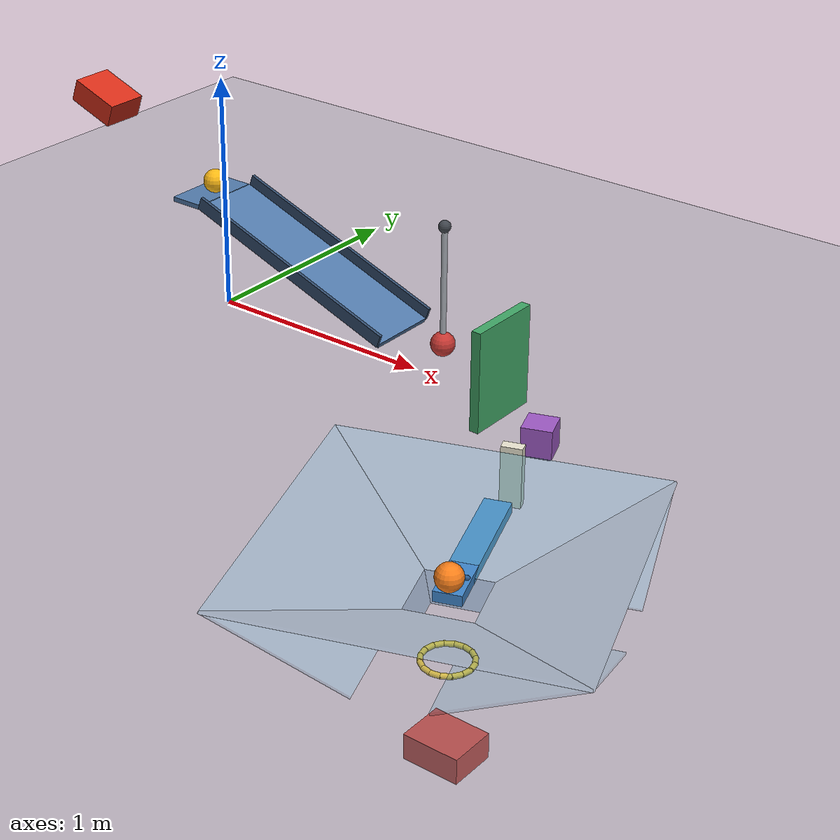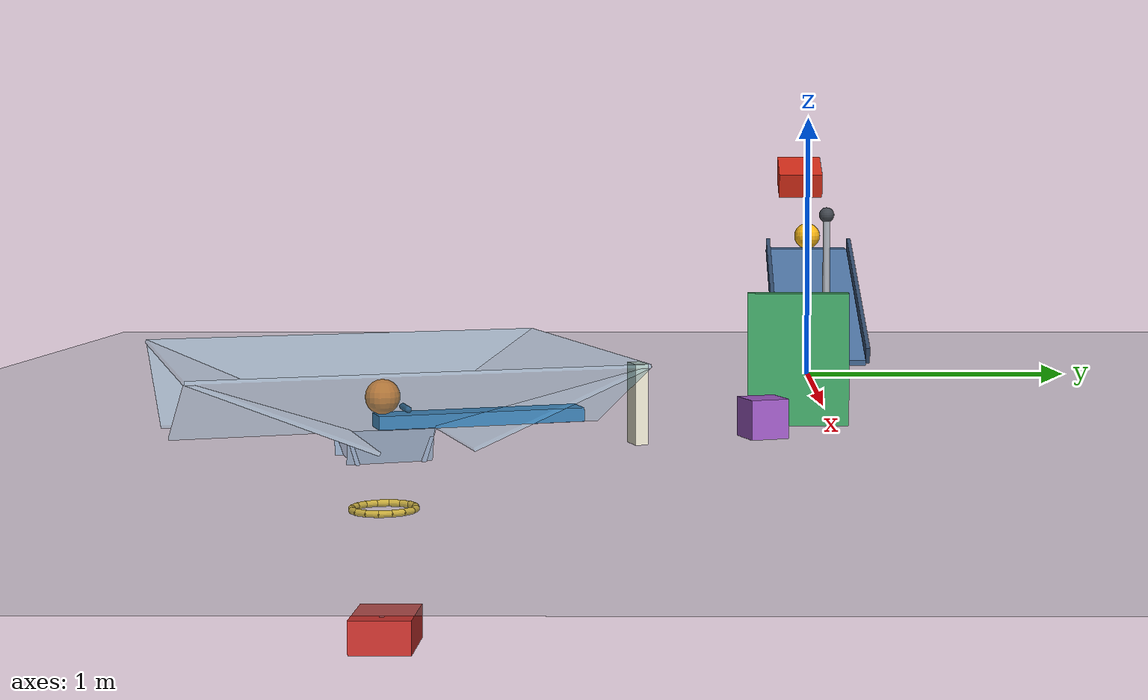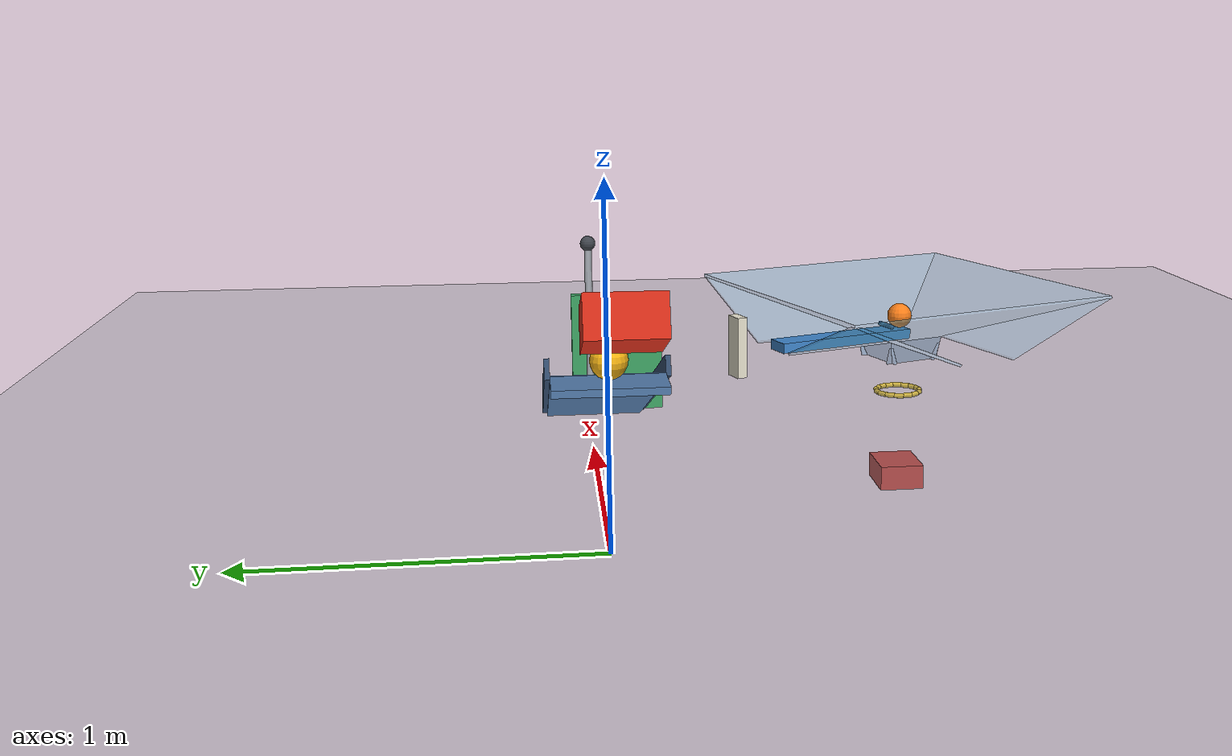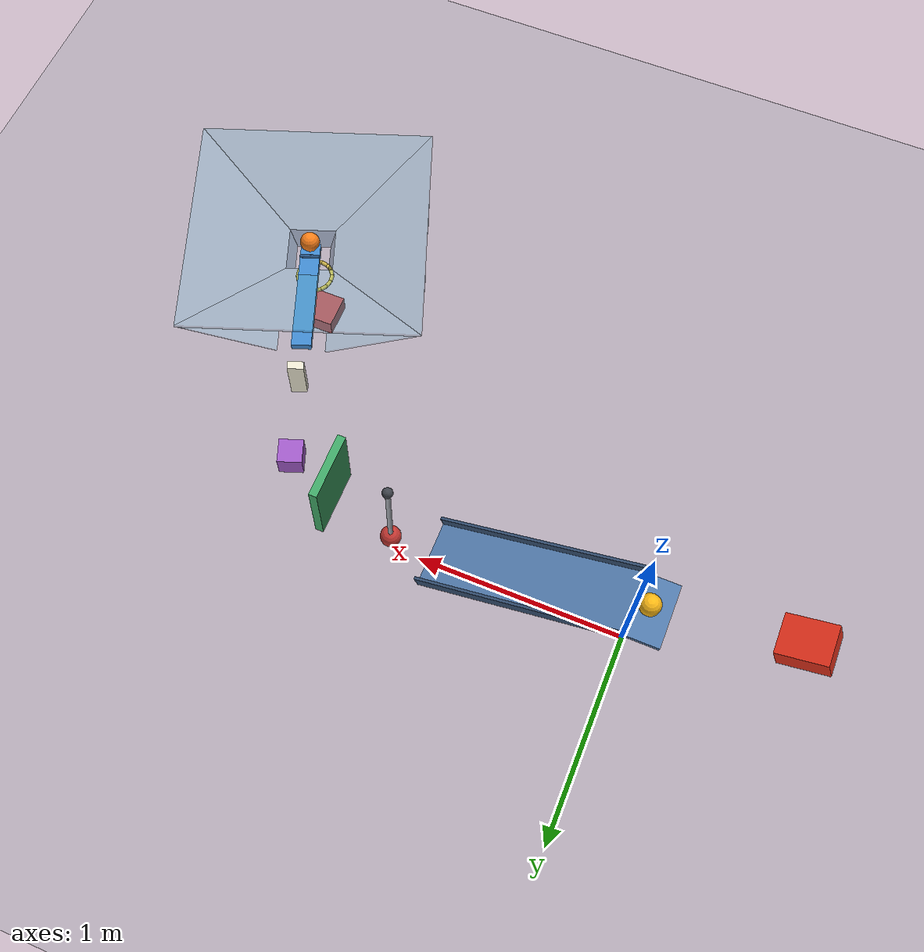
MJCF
<mujoco model="revised_chain_with_powered_assists">
  <compiler angle="degree" autolimits="true"/>
  <option timestep="0.002" gravity="0 0 -9.81" integrator="implicitfast" solver="Newton" iterations="100" tolerance="1e-10"/>
  <size njmax="5000" nconmax="1000"/>
  <visual>
    <global azimuth="135" elevation="-20"/>
    <quality shadowsize="2048"/>
  </visual>

  <!-- Restitution 0.05 is approximated through contact damping ratio 0.69. -->
  <!-- All hinge joints have damping 0.04; actuators add no velocity-dependent damping. -->
  <!-- All slide joints have damping 0.20. -->
  <!-- Collision filtering represents an open well beneath the launching mechanism. -->
  <!-- Powered assists reinforce displacement after contact; their reference forces are zero. -->
  <!-- This scene has not been simulation-validated. -->

  <worldbody>
    <light name="main_light" pos="0 -3 5" dir="0 0 -1" diffuse="0.8 0.8 0.8"/>
    <light name="fill_light" pos="4 3 3" dir="-1 -1 -1" diffuse="0.4 0.4 0.4"/>
    <camera name="overview" pos="4.5 -5 3" xyaxes="0.7809 0.6247 0 -0.2714 0.3393 0.9006"/>

    <geom name="floor" type="plane" pos="0 0 0" size="5 4 0.1" contype="1" conaffinity="1" condim="6" friction="0.68 0.005 0.0015" solref="0.006 0.69" solimp="0.95 0.99 0.001" rgba="0.55 0.59 0.62 0.28"/>

    <!-- Front-face clearance to ball1 is 0.50 m along the slide axis. -->
    <body name="cart1" pos="-0.67519713 0 0.76775344" quat="0.984807753 0 0.173648178 0">
      <joint name="cart1_slide" type="slide" axis="1 0 0" damping="0.20" limited="true" range="0 0.57" solreflimit="0.004 1"/>
      <geom name="cart1_chassis" type="box" size="0.11 0.09 0.05" mass="0.50" contype="1" conaffinity="1" condim="6" friction="0.68 0.005 0.0015" solref="0.006 0.69" solimp="0.95 0.99 0.001" rgba="0.85 0.18 0.10 1"/>
    </body>

    <!-- Main surface: length 1.00 m, width 0.30 m, inclination 20 degrees. -->
    <!-- The low surface edge is at z=0.15. -->
    <body name="ramp1" pos="0.46984631 0 0.32101007" quat="0.984807753 0 0.173648178 0">
      <geom name="ramp1_surface" type="box" pos="0 0 -0.01" size="0.50 0.15 0.01" contype="1" conaffinity="1" condim="6" friction="0.68 0.005 0.0015" solref="0.006 0.69" solimp="0.95 0.99 0.001" rgba="0.32 0.48 0.67 1"/>
      <geom name="ramp1_staging_shelf" type="box" pos="-0.571746 0 -0.036752" quat="0.984807753 0 -0.173648178 0" size="0.075 0.15 0.01" contype="1" conaffinity="1" condim="6" friction="0.68 0.005 0.0015" solref="0.006 0.69" solimp="0.95 0.99 0.001" rgba="0.32 0.48 0.67 1"/>
      <geom name="ramp1_left_rail" type="box" pos="0 -0.157 0.018" size="0.50 0.007 0.028" contype="1" conaffinity="1" condim="3" friction="0.68 0.005 0.0015" solref="0.006 0.69" solimp="0.95 0.99 0.001" rgba="0.20 0.30 0.43 1"/>
      <geom name="ramp1_right_rail" type="box" pos="0 0.157 0.018" size="0.50 0.007 0.028" contype="1" conaffinity="1" condim="3" friction="0.68 0.005 0.0015" solref="0.006 0.69" solimp="0.95 0.99 0.001" rgba="0.20 0.30 0.43 1"/>
    </body>

    <body name="ball1" pos="-0.055 0 0.54202014">
      <freejoint name="ball1_free"/>
      <geom name="ball1_sphere" type="sphere" size="0.05" mass="0.20" contype="1" conaffinity="1" condim="6" friction="0.68 0.005 0.0015" solref="0.006 0.69" solimp="0.95 0.99 0.001" rgba="0.98 0.72 0.08 1"/>
    </body>

    <!-- Pivot-to-bob length 0.50 m; total moving mass 0.35 kg. -->
    <!-- The initial near bob surface is 0.10 m beyond the ramp's low edge. -->
    <body name="pendulum1" pos="1.13969262 0 0.657">
      <joint name="pendulum1_hinge" type="hinge" axis="0 -1 0" damping="0.04" limited="true" range="0 40" solreflimit="0.003 1"/>
      <geom name="pendulum1_rod" type="capsule" fromto="0 0 0 0 0 -0.50" size="0.012" mass="0.04" contype="1" conaffinity="1" condim="3" friction="0.68 0.005 0.0015" solref="0.006 0.69" solimp="0.95 0.99 0.001" rgba="0.65 0.67 0.70 1"/>
      <geom name="pendulum1_bob" type="sphere" pos="0 0 -0.50" size="0.05" mass="0.30" contype="1" conaffinity="1" condim="6" friction="0.68 0.005 0.0015" solref="0.006 0.69" solimp="0.95 0.99 0.001" rgba="0.78 0.22 0.20 1"/>
      <geom name="pendulum1_hub" type="sphere" size="0.025" mass="0.01" contype="0" conaffinity="0" rgba="0.25 0.27 0.30 1"/>
    </body>

    <!-- Vertical door hinge; negative rotation is clockwise from above. -->
    <!-- Panel dimensions: height 0.42, width 0.32, thickness 0.04 m. -->
    <body name="door1" pos="1.491 -0.270 0.210">
      <joint name="door1_hinge" type="hinge" axis="0 0 1" damping="0.04" limited="true" range="-70 0" solreflimit="0.003 1"/>
      <geom name="door1_panel" type="box" pos="0 0.16 0" size="0.02 0.16 0.21" mass="0.45" contype="1" conaffinity="1" condim="6" friction="0.68 0.005 0.0015" solref="0.006 0.69" solimp="0.95 0.99 0.001" rgba="0.25 0.65 0.40 1"/>
    </body>

    <!-- Auxiliary prismatic mount prevents cube tipping while retaining block1's freejoint. -->
    <body name="block1_driver" pos="1.763528116 -0.229337656 0.060" quat="0.819152044 0 0 -0.573576436">
      <inertial pos="0 0 0" mass="0.001" diaginertia="0.000001 0.000001 0.000001"/>
      <joint name="block1_driver_slide" type="slide" axis="1 0 0" damping="0.20" limited="true" range="0 0.32" solreflimit="0.002 1"/>
    </body>

    <body name="block1" pos="1.763528116 -0.229337656 0.060" quat="0.819152044 0 0 -0.573576436">
      <freejoint name="block1_free"/>
      <geom name="block1_cube" type="box" size="0.06 0.06 0.06" mass="0.35" contype="1" conaffinity="1" condim="6" friction="0.68 0.005 0.0015" solref="0.006 0.69" solimp="0.95 0.99 0.001" rgba="0.62 0.35 0.77 1"/>
    </body>

    <!-- Forward-face contact occurs after block1 translates 0.32 m. -->
    <body name="domino1" pos="1.900336173 -0.605214704 0.120" quat="0.819152044 0 0 -0.573576436">
      <freejoint name="domino1_free"/>
      <geom name="domino1_slab" type="box" size="0.02 0.04 0.12" mass="0.25" contype="4" conaffinity="3" condim="6" friction="0.68 0.005 0.0015" solref="0.006 0.69" solimp="0.95 0.99 0.001" rgba="0.92 0.90 0.82 1"/>
    </body>

    <!-- Left tip is 0.18 m beyond domino1's initial center. -->
    <!-- Beam dimensions are 0.60 by 0.10 by 0.04 m; beam plus retaining lip mass is 0.50 kg. -->
    <!-- The retaining lip prevents ball2 from rolling down the tilted beam before the stop. -->
    <body name="lever1" pos="2.064505841 -1.056267162 0.100" quat="0.819152044 0 0 -0.573576436">
      <joint name="lever1_hinge" type="hinge" axis="0 -1 0" damping="0.04" limited="true" range="0 45" solreflimit="0.003 1"/>
      <geom name="lever1_beam" type="box" size="0.30 0.05 0.02" mass="0.497" contype="2" conaffinity="20" condim="6" friction="0.68 0.005 0.0015" solref="0.006 0.69" solimp="0.95 0.99 0.001" rgba="0.25 0.53 0.80 1"/>
      <geom name="lever1_ball_retaining_lip" type="capsule" fromto="0.215 -0.042 0.035 0.215 0.042 0.035" size="0.009" mass="0.003" contype="2" conaffinity="20" condim="6" friction="0.68 0.005 0.0015" solref="0.006 0.69" solimp="0.95 0.99 0.001" rgba="0.16 0.35 0.55 1"/>
    </body>

    <body name="ball2" pos="2.160271481 -1.319381096 0.170">
      <freejoint name="ball2_free"/>
      <geom name="ball2_sphere" type="sphere" size="0.05" mass="0.20" contype="16" conaffinity="98" condim="6" friction="0.68 0.005 0.0015" solref="0.006 0.69" solimp="0.95 0.99 0.001" rgba="0.98 0.50 0.10 1"/>
    </body>

    <!-- Passive catch funnel redirects the launched ball toward the vertically aligned ring. -->
    <!-- Group 64 contacts only ball2, not the lever, domino, block, or floor. -->
    <!-- The inner square mouth has 0.104 m clear width; ring1 itself has 0.16 m clearance. -->
    <body name="ball2_catch_funnel" pos="2.160271481 -1.319381096 0" quat="0.819152044 0 0 -0.573576436">
      <geom name="ball2_catch_funnel_outer_positive_u" type="box" pos="0.361923 0 0.195385" quat="0.980580676 0 -0.196116135 0" size="0.26 0.60 0.005" contype="64" conaffinity="16" condim="6" friction="0.68 0.005 0.0015" solref="0.006 0.69" solimp="0.95 0.99 0.001" rgba="0.35 0.65 0.75 0.35"/>
      <geom name="ball2_catch_funnel_outer_negative_u" type="box" pos="-0.361923 0 0.195385" quat="0.980580676 0 0.196116135 0" size="0.26 0.60 0.005" contype="64" conaffinity="16" condim="6" friction="0.68 0.005 0.0015" solref="0.006 0.69" solimp="0.95 0.99 0.001" rgba="0.35 0.65 0.75 0.35"/>
      <geom name="ball2_catch_funnel_outer_positive_v" type="box" pos="0 0.361923 0.195385" quat="0.980580676 0.196116135 0 0" size="0.60 0.26 0.005" contype="64" conaffinity="16" condim="6" friction="0.68 0.005 0.0015" solref="0.006 0.69" solimp="0.95 0.99 0.001" rgba="0.35 0.65 0.75 0.35"/>
      <geom name="ball2_catch_funnel_outer_negative_v" type="box" pos="0 -0.361923 0.195385" quat="0.980580676 -0.196116135 0 0" size="0.60 0.26 0.005" contype="64" conaffinity="16" condim="6" friction="0.68 0.005 0.0015" solref="0.006 0.69" solimp="0.95 0.99 0.001" rgba="0.35 0.65 0.75 0.35"/>
      <geom name="ball2_catch_funnel_inner_positive_u" type="box" pos="0.090777 0 -0.011477" quat="0.80477 0 -0.59359 0" size="0.115135 0.12 0.005" contype="64" conaffinity="16" condim="6" friction="0.68 0.005 0.0015" solref="0.006 0.69" solimp="0.95 0.99 0.001" rgba="0.25 0.50 0.65 0.45"/>
      <geom name="ball2_catch_funnel_inner_negative_u" type="box" pos="-0.090777 0 -0.011477" quat="0.80477 0 0.59359 0" size="0.115135 0.12 0.005" contype="64" conaffinity="16" condim="6" friction="0.68 0.005 0.0015" solref="0.006 0.69" solimp="0.95 0.99 0.001" rgba="0.25 0.50 0.65 0.45"/>
      <geom name="ball2_catch_funnel_inner_positive_v" type="box" pos="0 0.090777 -0.011477" quat="0.80477 0.59359 0 0" size="0.12 0.115135 0.005" contype="64" conaffinity="16" condim="6" friction="0.68 0.005 0.0015" solref="0.006 0.69" solimp="0.95 0.99 0.001" rgba="0.25 0.50 0.65 0.45"/>
      <geom name="ball2_catch_funnel_inner_negative_v" type="box" pos="0 -0.090777 -0.011477" quat="0.80477 -0.59359 0 0" size="0.12 0.115135 0.005" contype="64" conaffinity="16" condim="6" friction="0.68 0.005 0.0015" solref="0.006 0.69" solimp="0.95 0.99 0.001" rgba="0.25 0.50 0.65 0.45"/>
    </body>

    <!-- Ring center is exactly 0.32 m below ball2's initial center. -->
    <!-- Sixteen capsule segments approximate a horizontal ring with 0.16 m minimum clear diameter. -->
    <body name="ring1" pos="2.160271481 -1.319381096 -0.150">
      <geom name="ring1_segment_00" type="capsule" fromto="0.091763 0 0 0.084778 0.035116 0" size="0.01" contype="2" conaffinity="16" condim="3" friction="0.68 0.005 0.0015" solref="0.006 0.69" solimp="0.95 0.99 0.001" rgba="0.95 0.78 0.15 1"/>
      <geom name="ring1_segment_01" type="capsule" fromto="0.084778 0.035116 0 0.064887 0.064887 0" size="0.01" contype="2" conaffinity="16" condim="3" friction="0.68 0.005 0.0015" solref="0.006 0.69" solimp="0.95 0.99 0.001" rgba="0.95 0.78 0.15 1"/>
      <geom name="ring1_segment_02" type="capsule" fromto="0.064887 0.064887 0 0.035116 0.084778 0" size="0.01" contype="2" conaffinity="16" condim="3" friction="0.68 0.005 0.0015" solref="0.006 0.69" solimp="0.95 0.99 0.001" rgba="0.95 0.78 0.15 1"/>
      <geom name="ring1_segment_03" type="capsule" fromto="0.035116 0.084778 0 0 0.091763 0" size="0.01" contype="2" conaffinity="16" condim="3" friction="0.68 0.005 0.0015" solref="0.006 0.69" solimp="0.95 0.99 0.001" rgba="0.95 0.78 0.15 1"/>
      <geom name="ring1_segment_04" type="capsule" fromto="0 0.091763 0 -0.035116 0.084778 0" size="0.01" contype="2" conaffinity="16" condim="3" friction="0.68 0.005 0.0015" solref="0.006 0.69" solimp="0.95 0.99 0.001" rgba="0.95 0.78 0.15 1"/>
      <geom name="ring1_segment_05" type="capsule" fromto="-0.035116 0.084778 0 -0.064887 0.064887 0" size="0.01" contype="2" conaffinity="16" condim="3" friction="0.68 0.005 0.0015" solref="0.006 0.69" solimp="0.95 0.99 0.001" rgba="0.95 0.78 0.15 1"/>
      <geom name="ring1_segment_06" type="capsule" fromto="-0.064887 0.064887 0 -0.084778 0.035116 0" size="0.01" contype="2" conaffinity="16" condim="3" friction="0.68 0.005 0.0015" solref="0.006 0.69" solimp="0.95 0.99 0.001" rgba="0.95 0.78 0.15 1"/>
      <geom name="ring1_segment_07" type="capsule" fromto="-0.084778 0.035116 0 -0.091763 0 0" size="0.01" contype="2" conaffinity="16" condim="3" friction="0.68 0.005 0.0015" solref="0.006 0.69" solimp="0.95 0.99 0.001" rgba="0.95 0.78 0.15 1"/>
      <geom name="ring1_segment_08" type="capsule" fromto="-0.091763 0 0 -0.084778 -0.035116 0" size="0.01" contype="2" conaffinity="16" condim="3" friction="0.68 0.005 0.0015" solref="0.006 0.69" solimp="0.95 0.99 0.001" rgba="0.95 0.78 0.15 1"/>
      <geom name="ring1_segment_09" type="capsule" fromto="-0.084778 -0.035116 0 -0.064887 -0.064887 0" size="0.01" contype="2" conaffinity="16" condim="3" friction="0.68 0.005 0.0015" solref="0.006 0.69" solimp="0.95 0.99 0.001" rgba="0.95 0.78 0.15 1"/>
      <geom name="ring1_segment_10" type="capsule" fromto="-0.064887 -0.064887 0 -0.035116 -0.084778 0" size="0.01" contype="2" conaffinity="16" condim="3" friction="0.68 0.005 0.0015" solref="0.006 0.69" solimp="0.95 0.99 0.001" rgba="0.95 0.78 0.15 1"/>
      <geom name="ring1_segment_11" type="capsule" fromto="-0.035116 -0.084778 0 0 -0.091763 0" size="0.01" contype="2" conaffinity="16" condim="3" friction="0.68 0.005 0.0015" solref="0.006 0.69" solimp="0.95 0.99 0.001" rgba="0.95 0.78 0.15 1"/>
      <geom name="ring1_segment_12" type="capsule" fromto="0 -0.091763 0 0.035116 -0.084778 0" size="0.01" contype="2" conaffinity="16" condim="3" friction="0.68 0.005 0.0015" solref="0.006 0.69" solimp="0.95 0.99 0.001" rgba="0.95 0.78 0.15 1"/>
      <geom name="ring1_segment_13" type="capsule" fromto="0.035116 -0.084778 0 0.064887 -0.064887 0" size="0.01" contype="2" conaffinity="16" condim="3" friction="0.68 0.005 0.0015" solref="0.006 0.69" solimp="0.95 0.99 0.001" rgba="0.95 0.78 0.15 1"/>
      <geom name="ring1_segment_14" type="capsule" fromto="0.064887 -0.064887 0 0.084778 -0.035116 0" size="0.01" contype="2" conaffinity="16" condim="3" friction="0.68 0.005 0.0015" solref="0.006 0.69" solimp="0.95 0.99 0.001" rgba="0.95 0.78 0.15 1"/>
      <geom name="ring1_segment_15" type="capsule" fromto="0.084778 -0.035116 0 0.091763 0 0" size="0.01" contype="2" conaffinity="16" condim="3" friction="0.68 0.005 0.0015" solref="0.006 0.69" solimp="0.95 0.99 0.001" rgba="0.95 0.78 0.15 1"/>
    </body>

    <!-- This guide begins below the ring and cannot interfere with launch. -->
    <body name="ball2_lower_guide" pos="2.160271481 -1.319381096 0">
      <geom name="ball2_lower_guide_positive_x" type="capsule" fromto="0.059 0 -0.46 0.059 0 -0.20" size="0.007" contype="32" conaffinity="16" condim="3" friction="0.68 0.005 0.0015" solref="0.006 0.69" solimp="0.95 0.99 0.001" rgba="0.65 0.75 0.85 0.25"/>
      <geom name="ball2_lower_guide_negative_x" type="capsule" fromto="-0.059 0 -0.46 -0.059 0 -0.20" size="0.007" contype="32" conaffinity="16" condim="3" friction="0.68 0.005 0.0015" solref="0.006 0.69" solimp="0.95 0.99 0.001" rgba="0.65 0.75 0.85 0.25"/>
      <geom name="ball2_lower_guide_positive_y" type="capsule" fromto="0 0.059 -0.46 0 0.059 -0.20" size="0.007" contype="32" conaffinity="16" condim="3" friction="0.68 0.005 0.0015" solref="0.006 0.69" solimp="0.95 0.99 0.001" rgba="0.65 0.75 0.85 0.25"/>
      <geom name="ball2_lower_guide_negative_y" type="capsule" fromto="0 -0.059 -0.46 0 -0.059 -0.20" size="0.007" contype="32" conaffinity="16" condim="3" friction="0.68 0.005 0.0015" solref="0.006 0.69" solimp="0.95 0.99 0.001" rgba="0.65 0.75 0.85 0.25"/>
    </body>

    <!-- Ball-center deck contact at z=-0.40 is 0.25 m below the ring center. -->
    <body name="cart2" pos="2.160271481 -1.319381096 -0.500">
      <joint name="cart2_slide" type="slide" axis="1 0 0" damping="0.20" limited="true" range="-0.10 0.10" solreflimit="0.004 1"/>
      <geom name="cart2_chassis" type="box" size="0.11 0.09 0.05" mass="0.50" contype="2" conaffinity="16" condim="6" friction="0.68 0.005 0.0015" solref="0.006 0.69" solimp="0.95 0.99 0.001" rgba="0.80 0.20 0.18 1"/>
    </body>
  </worldbody>

  <!-- Initial compression is 0.20 m; stiffness is 18 N/m. -->
  <!-- The spring ceases pushing once fully extended. -->
  <tendon>
    <fixed name="cart1_axial_spring" stiffness="18" damping="0" springlength="0.20 1.00">
      <joint joint="cart1_slide" coef="1"/>
    </fixed>
  </tendon>

  <equality>
    <weld name="block1_prismatic_mount" body1="block1" body2="block1_driver" relpose="0 0 0 1 0 0 0" solref="0.002 1" solimp="0.99 0.999 0.0001"/>
  </equality>

  <!-- Powered displacement feedback; no actuator velocity feedback is present. -->
  <actuator>
    <general name="pendulum1_assist" joint="pendulum1_hinge" gear="1" gaintype="fixed" gainprm="0" biastype="affine" biasprm="0 4 0" forcelimited="true" forcerange="-2 2"/>
    <general name="door1_assist" joint="door1_hinge" gear="1" gaintype="fixed" gainprm="0" biastype="affine" biasprm="0 2 0" forcelimited="true" forcerange="-0.2 0.2"/>
    <general name="block1_assist" joint="block1_driver_slide" gear="1" gaintype="fixed" gainprm="0" biastype="affine" biasprm="0 200 0" forcelimited="true" forcerange="-3 3"/>
    <general name="lever1_assist" joint="lever1_hinge" gear="1" gaintype="fixed" gainprm="0" biastype="affine" biasprm="0 12 0" forcelimited="true" forcerange="-0.8 0.8"/>
  </actuator>

  <!-- Default qpos is the reference configuration; default qvel is zero for every body. -->
  <keyframe>
    <key name="start" time="0" ctrl="0 0 0 0"/>
  </keyframe>
</mujoco>
